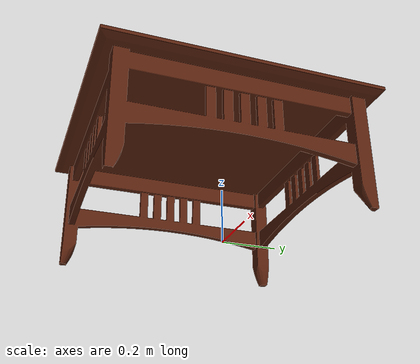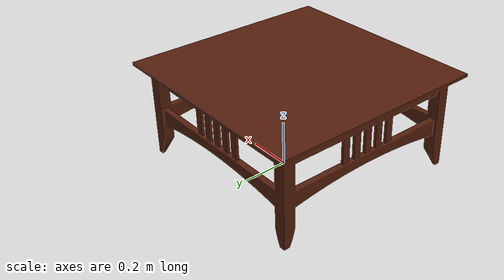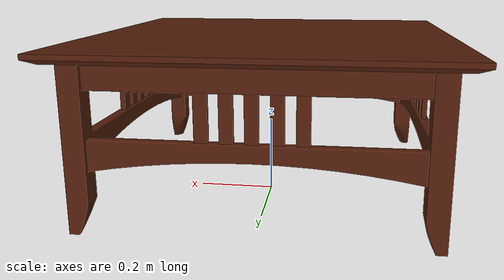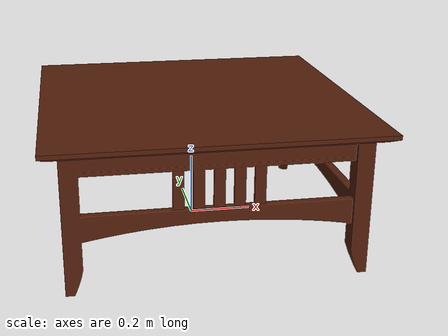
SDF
<?xml version="1.0"?>
<sdf version="1.4">
  <model name="table">
    <static>false</static>
    <link name="link">
      <collision name="collision">
<pose>-0.01 -0.1 0.215 0 0 0</pose>
        <geometry>
	<box>
      	   <size>0.98 1.0 0.44</size>
	</box>
        </geometry>
      </collision>
      <visual name="visual">
        <geometry>
          <mesh>
            <uri>model://table/meshes/table.dae</uri>
          </mesh>
        </geometry>
</visual>
    </link>
  </model>
</sdf>
